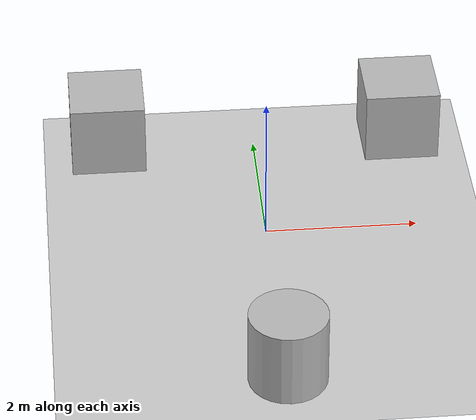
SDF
<?xml version="1.0" ?>
<sdf version="1.6">
  <world name="default">

    <include>
      <uri>model://ground_plane</uri>
    </include>

    <include>
      <uri>model://sun</uri>
    </include>

    <!-- Add some obstacles for LiDAR detection -->
    <model name="box1">
      <pose>2 2 0.5 0 0 0</pose>
      <static>true</static>
      <link name="link">
        <collision name="collision">
          <geometry>
            <box>
              <size>1 1 1</size>
            </box>
          </geometry>
        </collision>
        <visual name="visual">
          <geometry>
            <box>
              <size>1 1 1</size>
            </box>
          </geometry>
        </visual>
      </link>
    </model>

    <model name="box2">
      <pose>-2 2 0.5 0 0 0</pose>
      <static>true</static>
      <link name="link">
        <collision name="collision">
          <geometry>
            <box>
              <size>1 1 1</size>
            </box>
          </geometry>
        </collision>
        <visual name="visual">
          <geometry>
            <box>
              <size>1 1 1</size>
            </box>
          </geometry>
        </visual>
      </link>
    </model>

    <model name="cylinder1">
      <pose>0 -3 0.5 0 0 0</pose>
      <static>true</static>
      <link name="link">
        <collision name="collision">
          <geometry>
            <cylinder>
              <radius>0.5</radius>
              <length>1</length>
            </cylinder>
          </geometry>
        </collision>
        <visual name="visual">
          <geometry>
            <cylinder>
              <radius>0.5</radius>
              <length>1</length>
            </cylinder>
          </geometry>
        </visual>
      </link>
    </model>

  </world>
</sdf>
